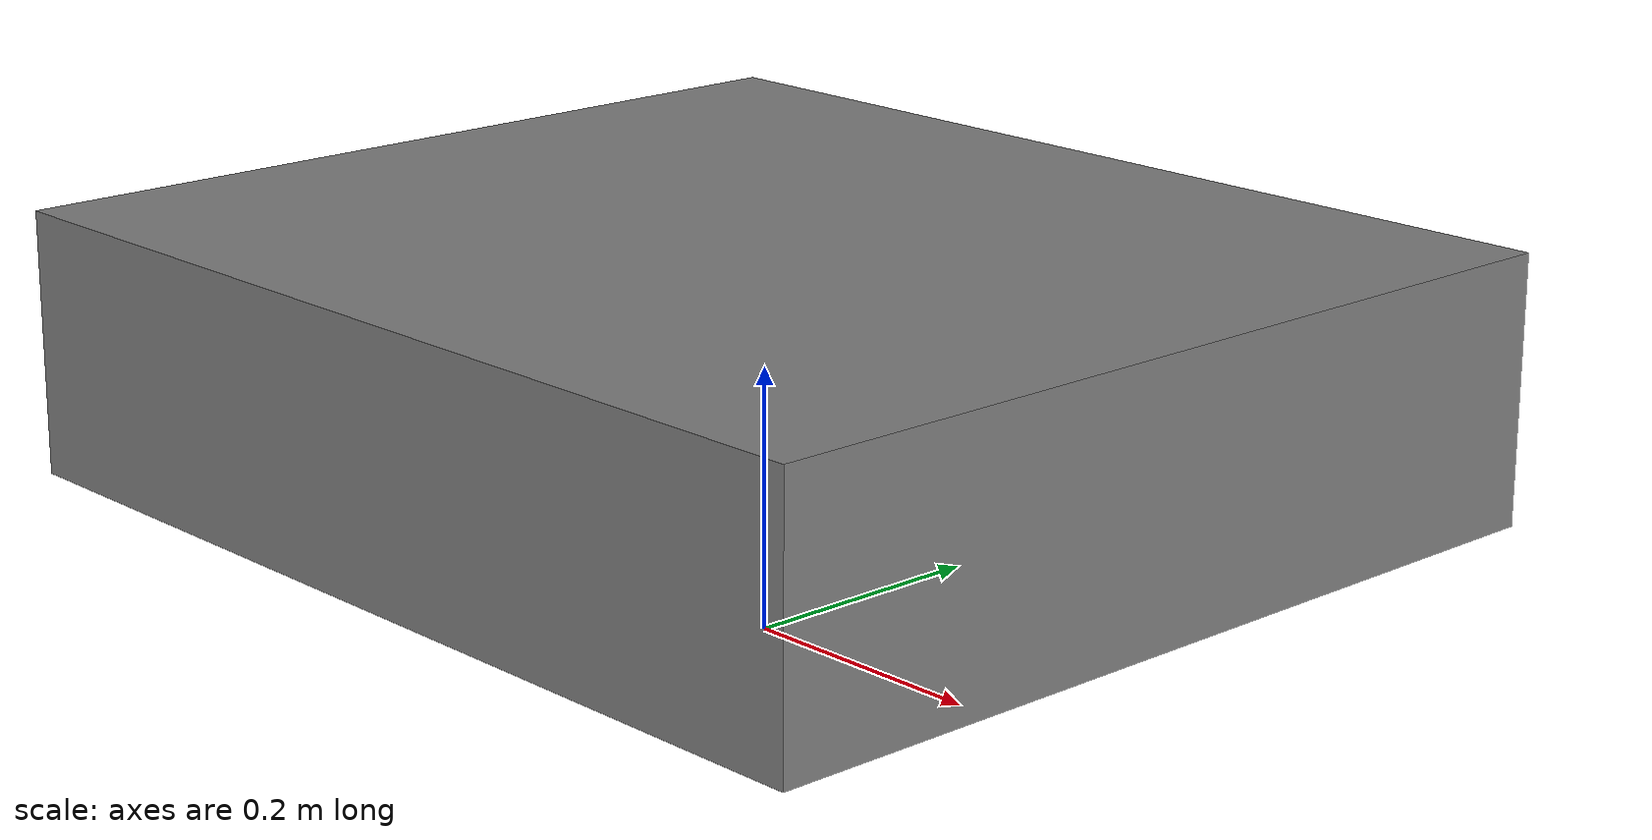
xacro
<?xml version="1.0"?>

<robot name="mobile" xmlns:xacro="http://www.ros.org/wiki/xacro">

    <material name="black">
        <color rgba="0.0 0.0 0.0 1.0" />
    </material>
    <material name="white">
        <color rgba="1.0 1.0 1.0 1.0" />
    </material>
    <material name="red">
        <color rgba="0.8 0.0 0.0 1.0" />
    </material>
    <material name="blue">
        <color rgba="0.0 0.0 0.8 1.0" />
    </material>
    <material name="green">
        <color rgba="0.0 0.8 0.0 1.0" />
    </material>
    <material name="grey">
        <color rgba="0.5 0.5 0.5 1.0" />
    </material>
    <material name="orange">
        <color rgba="${255/255} ${108/255} ${10/255} 1.0" />
    </material>
    <material name="brown">
        <color rgba="${222/255} ${207/255} ${195/255} 1.0" />
    </material>

    <link name="world"></link>

    <joint name="base_joint" type="fixed">
        <origin xyz="0 0 0.1" rpy="0 0 0" />
        <parent link="world" />
        <child link="base_link" />
    </joint>

    <link name='base_link'>
        <visual name='base_link_visual'>
            <material name="grey" />
            <origin xyz="0 0 0.1" rpy=" 0 0 0" />
            <geometry>
                <box size="0.8 0.7 0.2" />
            </geometry>
        </visual>
    </link>

</robot>
